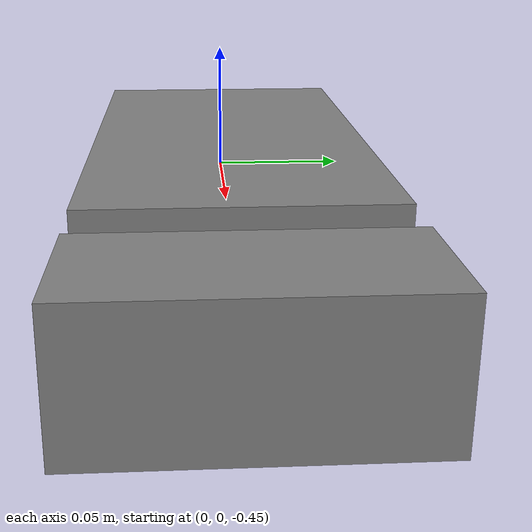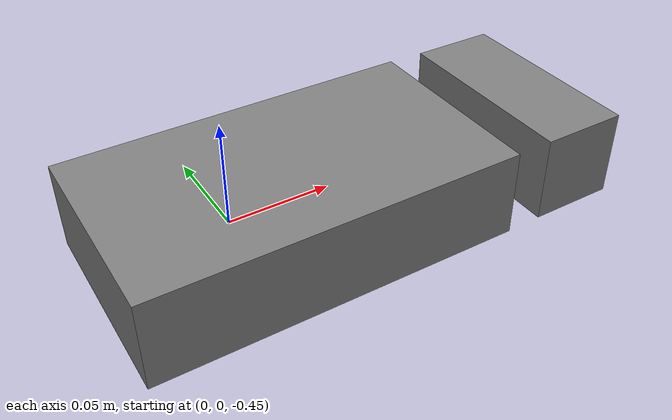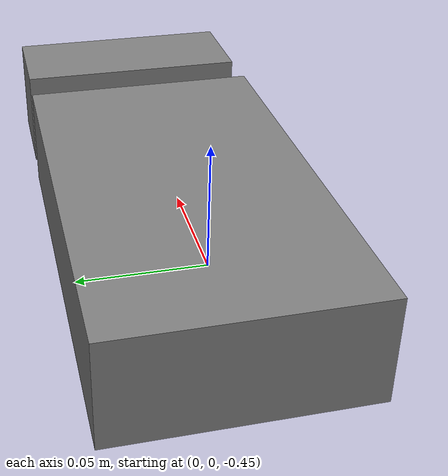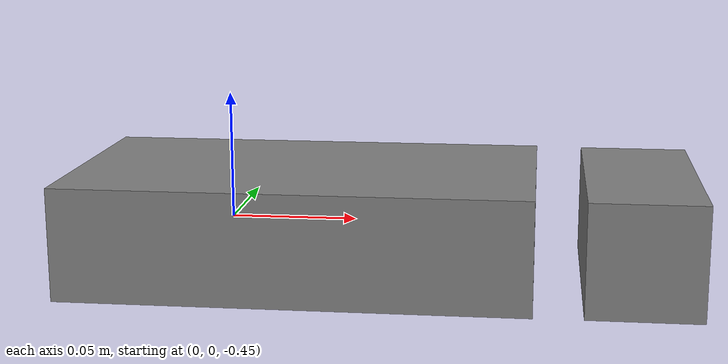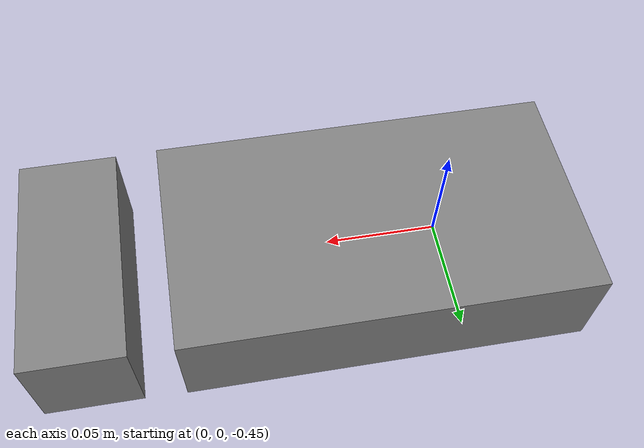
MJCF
<mujoco model="humanoid">

  <statistic extent="2" center="0 0 1"/>

  <option timestep="0.00555"/>

  <default>
    <motor ctrlrange="-1 1" ctrllimited="true"/>
    <default class="body">
      <geom type="capsule" condim="1" friction="0 0 0.0" solimp=".9 .99 .003" solref=".015 1"/>
      <joint type="hinge" damping="0.1" stiffness="5" armature=".007" limited="true" solimplimit="0 .99 .01"/>
      <site size=".04" group="3"/>
      <default class="force-torque">
        <site type="box" size=".01 .01 .02" rgba="1 0 0 1" />
      </default>
      <default class="touch">
        <site type="capsule" rgba="0 0 1 .3"/>
      </default>
    </default>
  </default>

  <worldbody>

    <body name="R_Ankle" pos="-0.0346 0.0191 -0.42">
        <geom type="box" contype="1" conaffinity="1" density="500" pos="0.0652 -0.0174 -0.0311" size="0.0908 0.0511 0.022" quat="1.0000 0.0000 0.0000 0.0000"/>
        <body name="R_Toe" pos="0.1303 -0.0348 -0.0621">
            <geom type="box" contype="1" conaffinity="1" density="500" pos="0.0662 0.0174 0.0309" size="0.0218 0.0506 0.0219" quat="1.0000 0.0000 0.0000 0.0000"/>
        </body>
    </body>
  </worldbody>

</mujoco>
